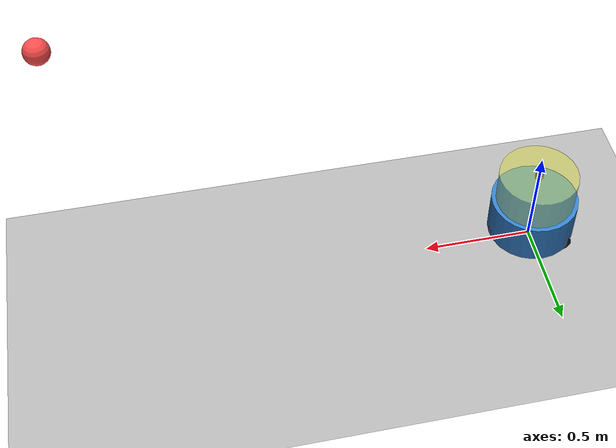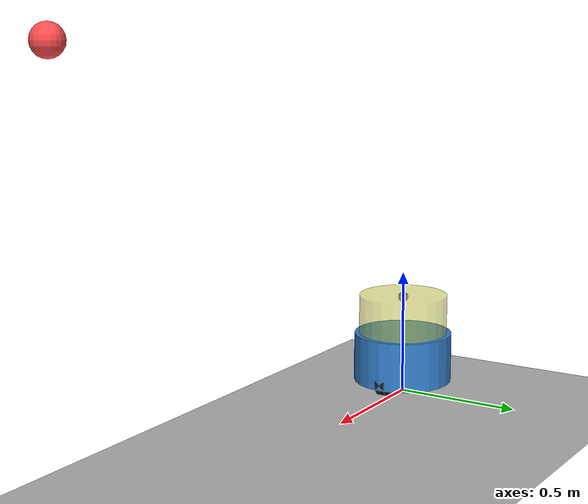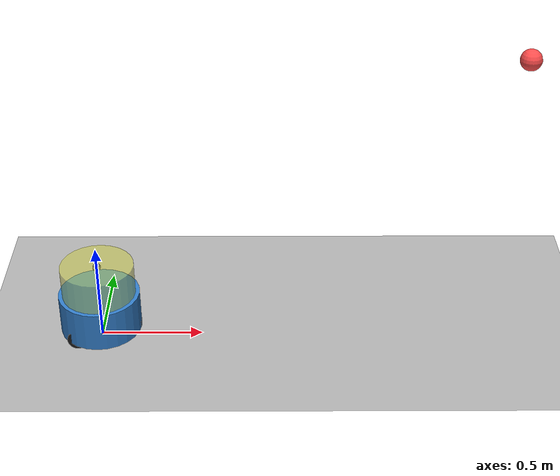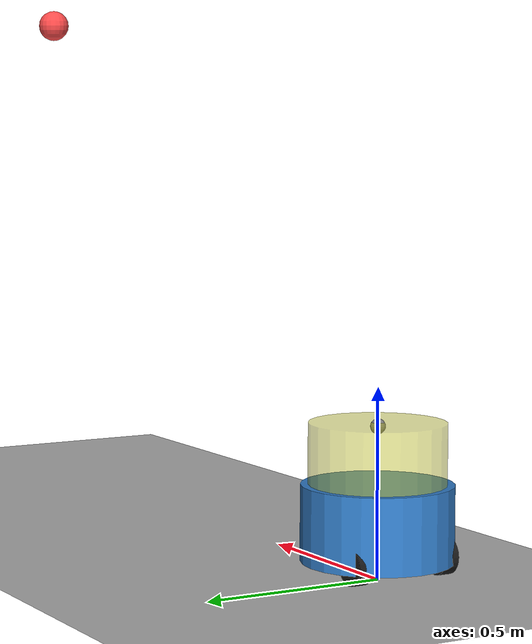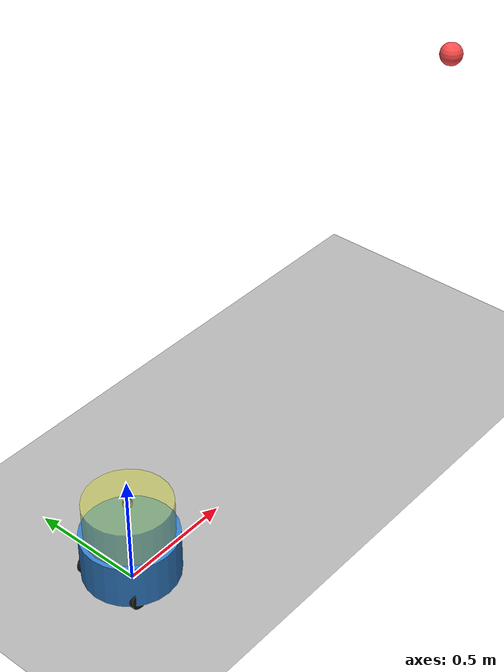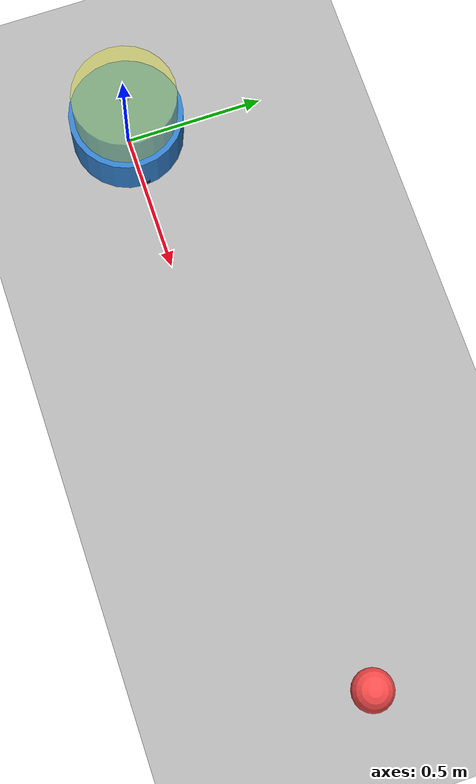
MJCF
<mujoco model="omni_trash_catcher">
  <option timestep="0.01" gravity="0 0 -9.81"/>

  <asset>
    <texture type="skybox" builtin="gradient" rgb1="0.8 0.9 1.0" rgb2="0.4 0.6 0.8" width="512" height="512"/>
    <texture name="floor_tex" type="2d" builtin="checker" rgb1="0.8 0.8 0.8" rgb2="0.6 0.6 0.6" width="512" height="512"/>
    <material name="floor_mat" texture="floor_tex" texrepeat="5 5"/>
    <material name="robot_mat" rgba="0.2 0.5 0.8 1"/>
    <material name="wheel_mat" rgba="0.1 0.1 0.1 1"/>
  </asset>

  <worldbody>
    <geom name="floor" type="plane" size="10 10 0.1" material="floor_mat"/>

    <!-- ロボット本体 -->
    <body name="robot" pos="0 0 0.15">
      <freejoint name="root"/>

      <!-- 本体 -->
      <geom name="body" type="cylinder" size="0.2 0.1" material="robot_mat" mass="3.0"/>

      <!-- ゴミ箱（上部） -->
      <geom name="basket" type="cylinder" size="0.18 0.08" pos="0 0 0.18" rgba="0.8 0.8 0.2 0.5" mass="0.5"/>

      <!-- 前輪 -->
      <body name="wheel_front" pos="0.15 0 -0.08">
        <geom name="wf" type="cylinder" size="0.05 0.02" euler="90 0 0" material="wheel_mat" mass="0.2"/>
      </body>

      <!-- 後左輪 -->
      <body name="wheel_back_left" pos="-0.1 0.13 -0.08">
        <geom name="wbl" type="cylinder" size="0.05 0.02" euler="90 0 0" material="wheel_mat" mass="0.2"/>
      </body>

      <!-- 後右輪 -->
      <body name="wheel_back_right" pos="-0.1 -0.13 -0.08">
        <geom name="wbr" type="cylinder" size="0.05 0.02" euler="90 0 0" material="wheel_mat" mass="0.2"/>
      </body>

      <!-- センサー（カメラ位置） -->
      <site name="camera_site" pos="0 0 0.25" size="0.02"/>
    </body>

    <!-- ゴミ（投げられるボール） -->
    <body name="trash" pos="2 0 1.5">
      <freejoint name="trash_joint"/>
      <geom name="trash_geom" type="sphere" size="0.05" rgba="1 0.3 0.3 1" mass="0.1"/>
    </body>
  </worldbody>

  <actuator>
    <!-- オムニホイールの速度制御 -->
    <velocity name="vx" joint="root" gear="1 0 0 0 0 0" kv="100"/>
    <velocity name="vy" joint="root" gear="0 1 0 0 0 0" kv="100"/>
  </actuator>

  <sensor>
    <framepos name="robot_pos" objtype="body" objname="robot"/>
    <framepos name="trash_pos" objtype="body" objname="trash"/>
  </sensor>
</mujoco>
